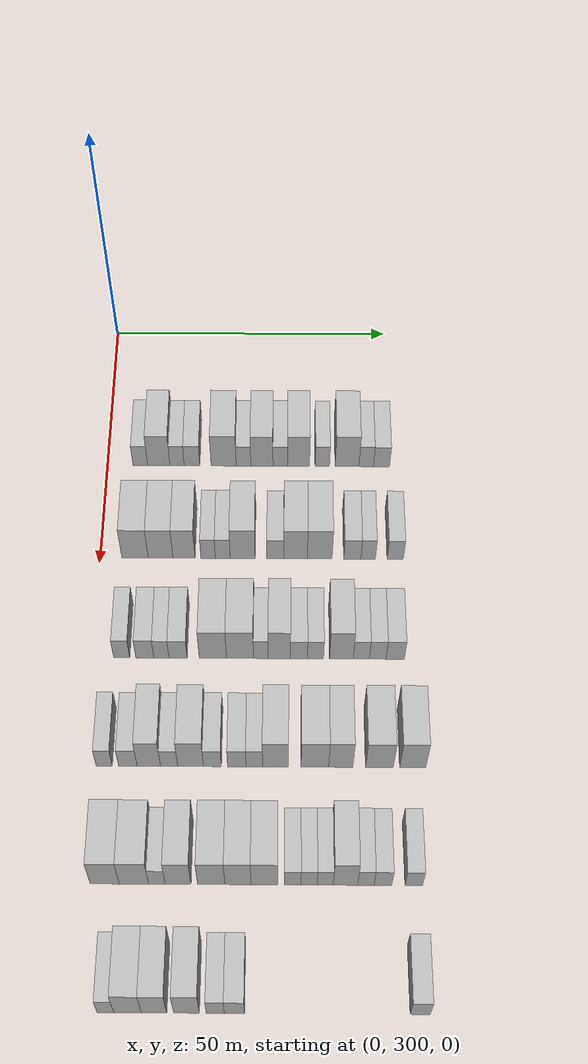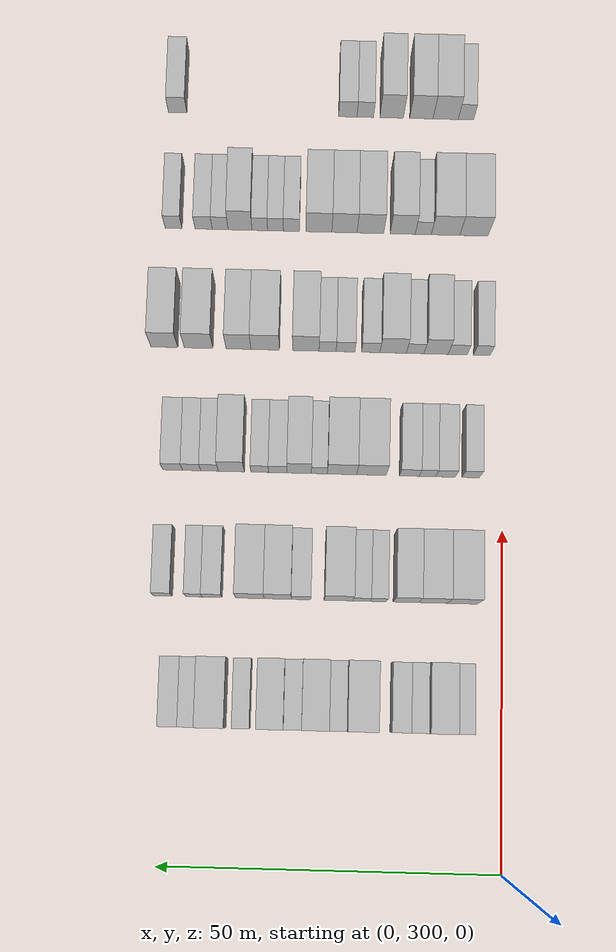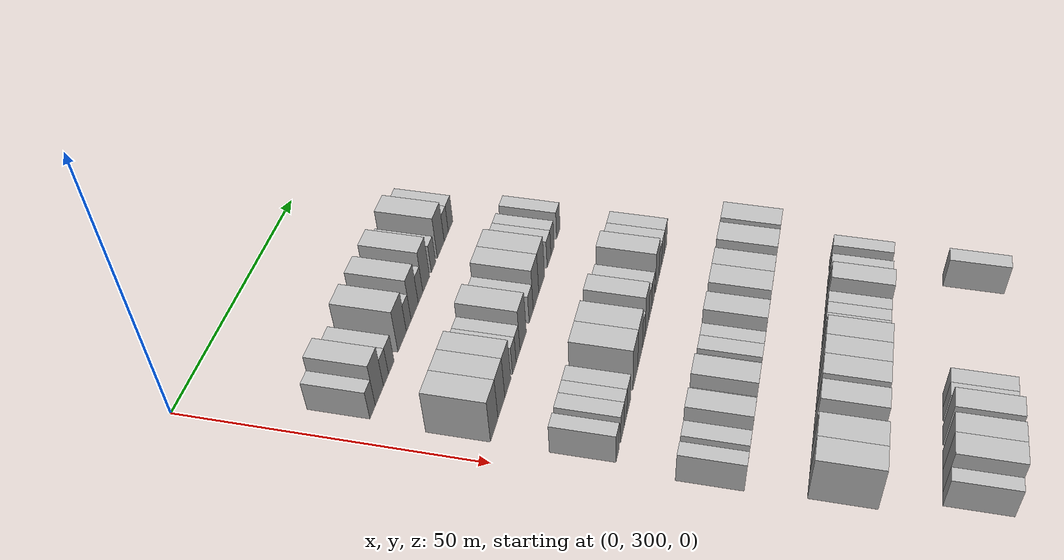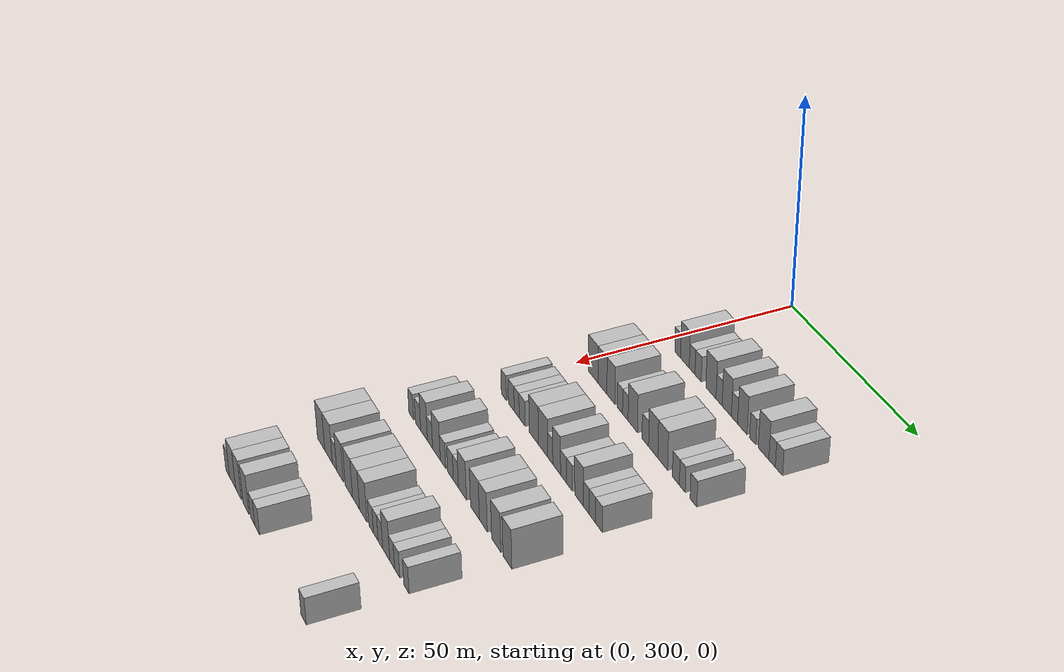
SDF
<sdf version="1.6">
 <world name="default">
  <model name="building_171">
   <static>1</static>
   <pose>25.0000 305.8912 0 0.000000 0.000000 0.000000</pose>
   <link name="link">
    <pose>0 0 3.00 0 0 0</pose>
    <collision name="collision"><geometry><box><size>10.0000 2.6040 6.0000</size></box></geometry></collision>
    <visual name="visual">
     <cast_shadows>0</cast_shadows>
     <geometry><box><size>10.0000 2.6040 6.0000</size></box></geometry>
     <material>
      <script>
       <uri>model://HANNAS_wall/materials/scripts</uri>
       <uri>model://HANNAS_wall/materials/textures</uri>
       <name>vrc/HANNAS_wall</name>
      </script>
     </material>
    </visual>
   </link>
  </model>
  <model name="building_172">
   <static>1</static>
   <pose>25.0000 309.1708 0 0.000000 0.000000 0.000000</pose>
   <link name="link">
    <pose>0 0 4.50 0 0 0</pose>
    <collision name="collision"><geometry><box><size>10.0000 3.9552 9.0000</size></box></geometry></collision>
    <visual name="visual">
     <cast_shadows>0</cast_shadows>
     <geometry><box><size>10.0000 3.9552 9.0000</size></box></geometry>
     <material>
      <script>
       <uri>model://HANNAS_wall/materials/scripts</uri>
       <uri>model://HANNAS_wall/materials/textures</uri>
       <name>vrc/HANNAS_wall</name>
      </script>
     </material>
    </visual>
   </link>
  </model>
  <model name="building_173">
   <static>1</static>
   <pose>25.0000 312.4122 0 0.000000 0.000000 0.000000</pose>
   <link name="link">
    <pose>0 0 3.00 0 0 0</pose>
    <collision name="collision"><geometry><box><size>10.0000 2.5276 6.0000</size></box></geometry></collision>
    <visual name="visual">
     <cast_shadows>0</cast_shadows>
     <geometry><box><size>10.0000 2.5276 6.0000</size></box></geometry>
     <material>
      <script>
       <uri>model://HANNAS_wall/materials/scripts</uri>
       <uri>model://HANNAS_wall/materials/textures</uri>
       <name>vrc/HANNAS_wall</name>
      </script>
     </material>
    </visual>
   </link>
  </model>
  <model name="building_174">
   <static>1</static>
   <pose>25.0000 315.0669 0 0.000000 0.000000 0.000000</pose>
   <link name="link">
    <pose>0 0 3.00 0 0 0</pose>
    <collision name="collision"><geometry><box><size>10.0000 2.7819 6.0000</size></box></geometry></collision>
    <visual name="visual">
     <cast_shadows>0</cast_shadows>
     <geometry><box><size>10.0000 2.7819 6.0000</size></box></geometry>
     <material>
      <script>
       <uri>model://HANNAS_wall/materials/scripts</uri>
       <uri>model://HANNAS_wall/materials/textures</uri>
       <name>vrc/HANNAS_wall</name>
      </script>
     </material>
    </visual>
   </link>
  </model>
  <model name="building_175">
   <static>1</static>
   <pose>25.0000 320.6797 0 0.000000 0.000000 0.000000</pose>
   <link name="link">
    <pose>0 0 4.50 0 0 0</pose>
    <collision name="collision"><geometry><box><size>10.0000 4.4437 9.0000</size></box></geometry></collision>
    <visual name="visual">
     <cast_shadows>0</cast_shadows>
     <geometry><box><size>10.0000 4.4437 9.0000</size></box></geometry>
     <material>
      <script>
       <uri>model://HANNAS_wall/materials/scripts</uri>
       <uri>model://HANNAS_wall/materials/textures</uri>
       <name>vrc/HANNAS_wall</name>
      </script>
     </material>
    </visual>
   </link>
  </model>
  <model name="building_176">
   <static>1</static>
   <pose>25.0000 324.1951 0 0.000000 0.000000 0.000000</pose>
   <link name="link">
    <pose>0 0 3.00 0 0 0</pose>
    <collision name="collision"><geometry><box><size>10.0000 2.5870 6.0000</size></box></geometry></collision>
    <visual name="visual">
     <cast_shadows>0</cast_shadows>
     <geometry><box><size>10.0000 2.5870 6.0000</size></box></geometry>
     <material>
      <script>
       <uri>model://HANNAS_wall/materials/scripts</uri>
       <uri>model://HANNAS_wall/materials/textures</uri>
       <name>vrc/HANNAS_wall</name>
      </script>
     </material>
    </visual>
   </link>
  </model>
  <model name="building_177">
   <static>1</static>
   <pose>25.0000 327.4568 0 0.000000 0.000000 0.000000</pose>
   <link name="link">
    <pose>0 0 4.50 0 0 0</pose>
    <collision name="collision"><geometry><box><size>10.0000 3.9363 9.0000</size></box></geometry></collision>
    <visual name="visual">
     <cast_shadows>0</cast_shadows>
     <geometry><box><size>10.0000 3.9363 9.0000</size></box></geometry>
     <material>
      <script>
       <uri>model://HANNAS_wall/materials/scripts</uri>
       <uri>model://HANNAS_wall/materials/textures</uri>
       <name>vrc/HANNAS_wall</name>
      </script>
     </material>
    </visual>
   </link>
  </model>
  <model name="building_178">
   <static>1</static>
   <pose>25.0000 330.7279 0 0.000000 0.000000 0.000000</pose>
   <link name="link">
    <pose>0 0 3.00 0 0 0</pose>
    <collision name="collision"><geometry><box><size>10.0000 2.6060 6.0000</size></box></geometry></collision>
    <visual name="visual">
     <cast_shadows>0</cast_shadows>
     <geometry><box><size>10.0000 2.6060 6.0000</size></box></geometry>
     <material>
      <script>
       <uri>model://HANNAS_wall/materials/scripts</uri>
       <uri>model://HANNAS_wall/materials/textures</uri>
       <name>vrc/HANNAS_wall</name>
      </script>
     </material>
    </visual>
   </link>
  </model>
  <model name="building_179">
   <static>1</static>
   <pose>25.0000 333.9753 0 0.000000 0.000000 0.000000</pose>
   <link name="link">
    <pose>0 0 4.50 0 0 0</pose>
    <collision name="collision"><geometry><box><size>10.0000 3.8887 9.0000</size></box></geometry></collision>
    <visual name="visual">
     <cast_shadows>0</cast_shadows>
     <geometry><box><size>10.0000 3.8887 9.0000</size></box></geometry>
     <material>
      <script>
       <uri>model://HANNAS_wall/materials/scripts</uri>
       <uri>model://HANNAS_wall/materials/textures</uri>
       <name>vrc/HANNAS_wall</name>
      </script>
     </material>
    </visual>
   </link>
  </model>
  <model name="building_180">
   <static>1</static>
   <pose>25.0000 338.1950 0 0.000000 0.000000 0.000000</pose>
   <link name="link">
    <pose>0 0 3.00 0 0 0</pose>
    <collision name="collision"><geometry><box><size>10.0000 2.5507 6.0000</size></box></geometry></collision>
    <visual name="visual">
     <cast_shadows>0</cast_shadows>
     <geometry><box><size>10.0000 2.5507 6.0000</size></box></geometry>
     <material>
      <script>
       <uri>model://HANNAS_wall/materials/scripts</uri>
       <uri>model://HANNAS_wall/materials/textures</uri>
       <name>vrc/HANNAS_wall</name>
      </script>
     </material>
    </visual>
   </link>
  </model>
  <model name="building_181">
   <static>1</static>
   <pose>25.0000 342.5899 0 0.000000 0.000000 0.000000</pose>
   <link name="link">
    <pose>0 0 4.50 0 0 0</pose>
    <collision name="collision"><geometry><box><size>10.0000 4.2392 9.0000</size></box></geometry></collision>
    <visual name="visual">
     <cast_shadows>0</cast_shadows>
     <geometry><box><size>10.0000 4.2392 9.0000</size></box></geometry>
     <material>
      <script>
       <uri>model://HANNAS_wall/materials/scripts</uri>
       <uri>model://HANNAS_wall/materials/textures</uri>
       <name>vrc/HANNAS_wall</name>
      </script>
     </material>
    </visual>
   </link>
  </model>
  <model name="building_182">
   <static>1</static>
   <pose>25.0000 345.9905 0 0.000000 0.000000 0.000000</pose>
   <link name="link">
    <pose>0 0 3.00 0 0 0</pose>
    <collision name="collision"><geometry><box><size>10.0000 2.5618 6.0000</size></box></geometry></collision>
    <visual name="visual">
     <cast_shadows>0</cast_shadows>
     <geometry><box><size>10.0000 2.5618 6.0000</size></box></geometry>
     <material>
      <script>
       <uri>model://HANNAS_wall/materials/scripts</uri>
       <uri>model://HANNAS_wall/materials/textures</uri>
       <name>vrc/HANNAS_wall</name>
      </script>
     </material>
    </visual>
   </link>
  </model>
  <model name="building_183">
   <static>1</static>
   <pose>25.0000 348.6983 0 0.000000 0.000000 0.000000</pose>
   <link name="link">
    <pose>0 0 3.00 0 0 0</pose>
    <collision name="collision"><geometry><box><size>10.0000 2.8539 6.0000</size></box></geometry></collision>
    <visual name="visual">
     <cast_shadows>0</cast_shadows>
     <geometry><box><size>10.0000 2.8539 6.0000</size></box></geometry>
     <material>
      <script>
       <uri>model://HANNAS_wall/materials/scripts</uri>
       <uri>model://HANNAS_wall/materials/textures</uri>
       <name>vrc/HANNAS_wall</name>
      </script>
     </material>
    </visual>
   </link>
  </model>
  <model name="building_333">
   <static>1</static>
   <pose>44.0000 305.9930 0 0.000000 0.000000 0.000000</pose>
   <link name="link">
    <pose>0 0 4.50 0 0 0</pose>
    <collision name="collision"><geometry><box><size>10.0000 4.4911 9.0000</size></box></geometry></collision>
    <visual name="visual">
     <cast_shadows>0</cast_shadows>
     <geometry><box><size>10.0000 4.4911 9.0000</size></box></geometry>
     <material>
      <script>
       <uri>model://HANNAS_wall/materials/scripts</uri>
       <uri>model://HANNAS_wall/materials/textures</uri>
       <name>vrc/HANNAS_wall</name>
      </script>
     </material>
    </visual>
   </link>
  </model>
  <model name="building_334">
   <static>1</static>
   <pose>44.0000 310.3567 0 0.000000 0.000000 0.000000</pose>
   <link name="link">
    <pose>0 0 4.50 0 0 0</pose>
    <collision name="collision"><geometry><box><size>10.0000 4.2363 9.0000</size></box></geometry></collision>
    <visual name="visual">
     <cast_shadows>0</cast_shadows>
     <geometry><box><size>10.0000 4.2363 9.0000</size></box></geometry>
     <material>
      <script>
       <uri>model://HANNAS_wall/materials/scripts</uri>
       <uri>model://HANNAS_wall/materials/textures</uri>
       <name>vrc/HANNAS_wall</name>
      </script>
     </material>
    </visual>
   </link>
  </model>
  <model name="building_335">
   <static>1</static>
   <pose>44.0000 314.3687 0 0.000000 0.000000 0.000000</pose>
   <link name="link">
    <pose>0 0 4.50 0 0 0</pose>
    <collision name="collision"><geometry><box><size>10.0000 3.7875 9.0000</size></box></geometry></collision>
    <visual name="visual">
     <cast_shadows>0</cast_shadows>
     <geometry><box><size>10.0000 3.7875 9.0000</size></box></geometry>
     <material>
      <script>
       <uri>model://HANNAS_wall/materials/scripts</uri>
       <uri>model://HANNAS_wall/materials/textures</uri>
       <name>vrc/HANNAS_wall</name>
      </script>
     </material>
    </visual>
   </link>
  </model>
  <model name="building_336">
   <static>1</static>
   <pose>44.0000 318.4871 0 0.000000 0.000000 0.000000</pose>
   <link name="link">
    <pose>0 0 3.00 0 0 0</pose>
    <collision name="collision"><geometry><box><size>10.0000 2.4493 6.0000</size></box></geometry></collision>
    <visual name="visual">
     <cast_shadows>0</cast_shadows>
     <geometry><box><size>10.0000 2.4493 6.0000</size></box></geometry>
     <material>
      <script>
       <uri>model://HANNAS_wall/materials/scripts</uri>
       <uri>model://HANNAS_wall/materials/textures</uri>
       <name>vrc/HANNAS_wall</name>
      </script>
     </material>
    </visual>
   </link>
  </model>
  <model name="building_337">
   <static>1</static>
   <pose>44.0000 320.9873 0 0.000000 0.000000 0.000000</pose>
   <link name="link">
    <pose>0 0 3.00 0 0 0</pose>
    <collision name="collision"><geometry><box><size>10.0000 2.5511 6.0000</size></box></geometry></collision>
    <visual name="visual">
     <cast_shadows>0</cast_shadows>
     <geometry><box><size>10.0000 2.5511 6.0000</size></box></geometry>
     <material>
      <script>
       <uri>model://HANNAS_wall/materials/scripts</uri>
       <uri>model://HANNAS_wall/materials/textures</uri>
       <name>vrc/HANNAS_wall</name>
      </script>
     </material>
    </visual>
   </link>
  </model>
  <model name="building_338">
   <static>1</static>
   <pose>44.0000 324.3921 0 0.000000 0.000000 0.000000</pose>
   <link name="link">
    <pose>0 0 4.50 0 0 0</pose>
    <collision name="collision"><geometry><box><size>10.0000 4.2586 9.0000</size></box></geometry></collision>
    <visual name="visual">
     <cast_shadows>0</cast_shadows>
     <geometry><box><size>10.0000 4.2586 9.0000</size></box></geometry>
     <material>
      <script>
       <uri>model://HANNAS_wall/materials/scripts</uri>
       <uri>model://HANNAS_wall/materials/textures</uri>
       <name>vrc/HANNAS_wall</name>
      </script>
     </material>
    </visual>
   </link>
  </model>
  <model name="building_339">
   <static>1</static>
   <pose>44.0000 329.9671 0 0.000000 0.000000 0.000000</pose>
   <link name="link">
    <pose>0 0 3.00 0 0 0</pose>
    <collision name="collision"><geometry><box><size>10.0000 2.8915 6.0000</size></box></geometry></collision>
    <visual name="visual">
     <cast_shadows>0</cast_shadows>
     <geometry><box><size>10.0000 2.8915 6.0000</size></box></geometry>
     <material>
      <script>
       <uri>model://HANNAS_wall/materials/scripts</uri>
       <uri>model://HANNAS_wall/materials/textures</uri>
       <name>vrc/HANNAS_wall</name>
      </script>
     </material>
    </visual>
   </link>
  </model>
  <model name="building_340">
   <static>1</static>
   <pose>44.0000 333.4193 0 0.000000 0.000000 0.000000</pose>
   <link name="link">
    <pose>0 0 4.50 0 0 0</pose>
    <collision name="collision"><geometry><box><size>10.0000 4.0128 9.0000</size></box></geometry></collision>
    <visual name="visual">
     <cast_shadows>0</cast_shadows>
     <geometry><box><size>10.0000 4.0128 9.0000</size></box></geometry>
     <material>
      <script>
       <uri>model://HANNAS_wall/materials/scripts</uri>
       <uri>model://HANNAS_wall/materials/textures</uri>
       <name>vrc/HANNAS_wall</name>
      </script>
     </material>
    </visual>
   </link>
  </model>
  <model name="building_341">
   <static>1</static>
   <pose>44.0000 337.5423 0 0.000000 0.000000 0.000000</pose>
   <link name="link">
    <pose>0 0 4.50 0 0 0</pose>
    <collision name="collision"><geometry><box><size>10.0000 4.2333 9.0000</size></box></geometry></collision>
    <visual name="visual">
     <cast_shadows>0</cast_shadows>
     <geometry><box><size>10.0000 4.2333 9.0000</size></box></geometry>
     <material>
      <script>
       <uri>model://HANNAS_wall/materials/scripts</uri>
       <uri>model://HANNAS_wall/materials/textures</uri>
       <name>vrc/HANNAS_wall</name>
      </script>
     </material>
    </visual>
   </link>
  </model>
  <model name="building_342">
   <static>1</static>
   <pose>44.0000 343.1254 0 0.000000 0.000000 0.000000</pose>
   <link name="link">
    <pose>0 0 3.00 0 0 0</pose>
    <collision name="collision"><geometry><box><size>10.0000 2.9328 6.0000</size></box></geometry></collision>
    <visual name="visual">
     <cast_shadows>0</cast_shadows>
     <geometry><box><size>10.0000 2.9328 6.0000</size></box></geometry>
     <material>
      <script>
       <uri>model://HANNAS_wall/materials/scripts</uri>
       <uri>model://HANNAS_wall/materials/textures</uri>
       <name>vrc/HANNAS_wall</name>
      </script>
     </material>
    </visual>
   </link>
  </model>
  <model name="building_343">
   <static>1</static>
   <pose>44.0000 345.8350 0 0.000000 0.000000 0.000000</pose>
   <link name="link">
    <pose>0 0 3.00 0 0 0</pose>
    <collision name="collision"><geometry><box><size>10.0000 2.4865 6.0000</size></box></geometry></collision>
    <visual name="visual">
     <cast_shadows>0</cast_shadows>
     <geometry><box><size>10.0000 2.4865 6.0000</size></box></geometry>
     <material>
      <script>
       <uri>model://HANNAS_wall/materials/scripts</uri>
       <uri>model://HANNAS_wall/materials/textures</uri>
       <name>vrc/HANNAS_wall</name>
      </script>
     </material>
    </visual>
   </link>
  </model>
  <model name="building_344">
   <static>1</static>
   <pose>44.0000 350.4587 0 0.000000 0.000000 0.000000</pose>
   <link name="link">
    <pose>0 0 3.00 0 0 0</pose>
    <collision name="collision"><geometry><box><size>10.0000 2.7607 6.0000</size></box></geometry></collision>
    <visual name="visual">
     <cast_shadows>0</cast_shadows>
     <geometry><box><size>10.0000 2.7607 6.0000</size></box></geometry>
     <material>
      <script>
       <uri>model://HANNAS_wall/materials/scripts</uri>
       <uri>model://HANNAS_wall/materials/textures</uri>
       <name>vrc/HANNAS_wall</name>
      </script>
     </material>
    </visual>
   </link>
  </model>
  <model name="building_498">
   <static>1</static>
   <pose>63.0000 304.8606 0 0.000000 0.000000 0.000000</pose>
   <link name="link">
    <pose>0 0 3.00 0 0 0</pose>
    <collision name="collision"><geometry><box><size>10.0000 2.6306 6.0000</size></box></geometry></collision>
    <visual name="visual">
     <cast_shadows>0</cast_shadows>
     <geometry><box><size>10.0000 2.6306 6.0000</size></box></geometry>
     <material>
      <script>
       <uri>model://HANNAS_wall/materials/scripts</uri>
       <uri>model://HANNAS_wall/materials/textures</uri>
       <name>vrc/HANNAS_wall</name>
      </script>
     </material>
    </visual>
   </link>
  </model>
  <model name="building_499">
   <static>1</static>
   <pose>63.0000 308.6495 0 0.000000 0.000000 0.000000</pose>
   <link name="link">
    <pose>0 0 3.00 0 0 0</pose>
    <collision name="collision"><geometry><box><size>10.0000 2.9471 6.0000</size></box></geometry></collision>
    <visual name="visual">
     <cast_shadows>0</cast_shadows>
     <geometry><box><size>10.0000 2.9471 6.0000</size></box></geometry>
     <material>
      <script>
       <uri>model://HANNAS_wall/materials/scripts</uri>
       <uri>model://HANNAS_wall/materials/textures</uri>
       <name>vrc/HANNAS_wall</name>
      </script>
     </material>
    </visual>
   </link>
  </model>
  <model name="building_500">
   <static>1</static>
   <pose>63.0000 311.3678 0 0.000000 0.000000 0.000000</pose>
   <link name="link">
    <pose>0 0 3.00 0 0 0</pose>
    <collision name="collision"><geometry><box><size>10.0000 2.4896 6.0000</size></box></geometry></collision>
    <visual name="visual">
     <cast_shadows>0</cast_shadows>
     <geometry><box><size>10.0000 2.4896 6.0000</size></box></geometry>
     <material>
      <script>
       <uri>model://HANNAS_wall/materials/scripts</uri>
       <uri>model://HANNAS_wall/materials/textures</uri>
       <name>vrc/HANNAS_wall</name>
      </script>
     </material>
    </visual>
   </link>
  </model>
  <model name="building_501">
   <static>1</static>
   <pose>63.0000 314.1089 0 0.000000 0.000000 0.000000</pose>
   <link name="link">
    <pose>0 0 3.00 0 0 0</pose>
    <collision name="collision"><geometry><box><size>10.0000 2.9926 6.0000</size></box></geometry></collision>
    <visual name="visual">
     <cast_shadows>0</cast_shadows>
     <geometry><box><size>10.0000 2.9926 6.0000</size></box></geometry>
     <material>
      <script>
       <uri>model://HANNAS_wall/materials/scripts</uri>
       <uri>model://HANNAS_wall/materials/textures</uri>
       <name>vrc/HANNAS_wall</name>
      </script>
     </material>
    </visual>
   </link>
  </model>
  <model name="building_502">
   <static>1</static>
   <pose>63.0000 319.8321 0 0.000000 0.000000 0.000000</pose>
   <link name="link">
    <pose>0 0 4.50 0 0 0</pose>
    <collision name="collision"><geometry><box><size>10.0000 4.4537 9.0000</size></box></geometry></collision>
    <visual name="visual">
     <cast_shadows>0</cast_shadows>
     <geometry><box><size>10.0000 4.4537 9.0000</size></box></geometry>
     <material>
      <script>
       <uri>model://HANNAS_wall/materials/scripts</uri>
       <uri>model://HANNAS_wall/materials/textures</uri>
       <name>vrc/HANNAS_wall</name>
      </script>
     </material>
    </visual>
   </link>
  </model>
  <model name="building_503">
   <static>1</static>
   <pose>63.0000 324.2821 0 0.000000 0.000000 0.000000</pose>
   <link name="link">
    <pose>0 0 4.50 0 0 0</pose>
    <collision name="collision"><geometry><box><size>10.0000 4.4464 9.0000</size></box></geometry></collision>
    <visual name="visual">
     <cast_shadows>0</cast_shadows>
     <geometry><box><size>10.0000 4.4464 9.0000</size></box></geometry>
     <material>
      <script>
       <uri>model://HANNAS_wall/materials/scripts</uri>
       <uri>model://HANNAS_wall/materials/textures</uri>
       <name>vrc/HANNAS_wall</name>
      </script>
     </material>
    </visual>
   </link>
  </model>
  <model name="building_504">
   <static>1</static>
   <pose>63.0000 327.7085 0 0.000000 0.000000 0.000000</pose>
   <link name="link">
    <pose>0 0 3.00 0 0 0</pose>
    <collision name="collision"><geometry><box><size>10.0000 2.4064 6.0000</size></box></geometry></collision>
    <visual name="visual">
     <cast_shadows>0</cast_shadows>
     <geometry><box><size>10.0000 2.4064 6.0000</size></box></geometry>
     <material>
      <script>
       <uri>model://HANNAS_wall/materials/scripts</uri>
       <uri>model://HANNAS_wall/materials/textures</uri>
       <name>vrc/HANNAS_wall</name>
      </script>
     </material>
    </visual>
   </link>
  </model>
  <model name="building_505">
   <static>1</static>
   <pose>63.0000 330.7235 0 0.000000 0.000000 0.000000</pose>
   <link name="link">
    <pose>0 0 4.50 0 0 0</pose>
    <collision name="collision"><geometry><box><size>10.0000 3.6236 9.0000</size></box></geometry></collision>
    <visual name="visual">
     <cast_shadows>0</cast_shadows>
     <geometry><box><size>10.0000 3.6236 9.0000</size></box></geometry>
     <material>
      <script>
       <uri>model://HANNAS_wall/materials/scripts</uri>
       <uri>model://HANNAS_wall/materials/textures</uri>
       <name>vrc/HANNAS_wall</name>
      </script>
     </material>
    </visual>
   </link>
  </model>
  <model name="building_506">
   <static>1</static>
   <pose>63.0000 333.9336 0 0.000000 0.000000 0.000000</pose>
   <link name="link">
    <pose>0 0 3.00 0 0 0</pose>
    <collision name="collision"><geometry><box><size>10.0000 2.7966 6.0000</size></box></geometry></collision>
    <visual name="visual">
     <cast_shadows>0</cast_shadows>
     <geometry><box><size>10.0000 2.7966 6.0000</size></box></geometry>
     <material>
      <script>
       <uri>model://HANNAS_wall/materials/scripts</uri>
       <uri>model://HANNAS_wall/materials/textures</uri>
       <name>vrc/HANNAS_wall</name>
      </script>
     </material>
    </visual>
   </link>
  </model>
  <model name="building_507">
   <static>1</static>
   <pose>63.0000 336.6606 0 0.000000 0.000000 0.000000</pose>
   <link name="link">
    <pose>0 0 3.00 0 0 0</pose>
    <collision name="collision"><geometry><box><size>10.0000 2.6573 6.0000</size></box></geometry></collision>
    <visual name="visual">
     <cast_shadows>0</cast_shadows>
     <geometry><box><size>10.0000 2.6573 6.0000</size></box></geometry>
     <material>
      <script>
       <uri>model://HANNAS_wall/materials/scripts</uri>
       <uri>model://HANNAS_wall/materials/textures</uri>
       <name>vrc/HANNAS_wall</name>
      </script>
     </material>
    </visual>
   </link>
  </model>
  <model name="building_508">
   <static>1</static>
   <pose>63.0000 340.9432 0 0.000000 0.000000 0.000000</pose>
   <link name="link">
    <pose>0 0 4.50 0 0 0</pose>
    <collision name="collision"><geometry><box><size>10.0000 3.9077 9.0000</size></box></geometry></collision>
    <visual name="visual">
     <cast_shadows>0</cast_shadows>
     <geometry><box><size>10.0000 3.9077 9.0000</size></box></geometry>
     <material>
      <script>
       <uri>model://HANNAS_wall/materials/scripts</uri>
       <uri>model://HANNAS_wall/materials/textures</uri>
       <name>vrc/HANNAS_wall</name>
      </script>
     </material>
    </visual>
   </link>
  </model>
  <model name="building_509">
   <static>1</static>
   <pose>63.0000 344.2219 0 0.000000 0.000000 0.000000</pose>
   <link name="link">
    <pose>0 0 3.00 0 0 0</pose>
    <collision name="collision"><geometry><box><size>10.0000 2.6498 6.0000</size></box></geometry></collision>
    <visual name="visual">
     <cast_shadows>0</cast_shadows>
     <geometry><box><size>10.0000 2.6498 6.0000</size></box></geometry>
     <material>
      <script>
       <uri>model://HANNAS_wall/materials/scripts</uri>
       <uri>model://HANNAS_wall/materials/textures</uri>
       <name>vrc/HANNAS_wall</name>
      </script>
     </material>
    </visual>
   </link>
  </model>
  <model name="building_510">
   <static>1</static>
   <pose>63.0000 346.9175 0 0.000000 0.000000 0.000000</pose>
   <link name="link">
    <pose>0 0 3.00 0 0 0</pose>
    <collision name="collision"><geometry><box><size>10.0000 2.7413 6.0000</size></box></geometry></collision>
    <visual name="visual">
     <cast_shadows>0</cast_shadows>
     <geometry><box><size>10.0000 2.7413 6.0000</size></box></geometry>
     <material>
      <script>
       <uri>model://HANNAS_wall/materials/scripts</uri>
       <uri>model://HANNAS_wall/materials/textures</uri>
       <name>vrc/HANNAS_wall</name>
      </script>
     </material>
    </visual>
   </link>
  </model>
  <model name="building_511">
   <static>1</static>
   <pose>63.0000 349.7833 0 0.000000 0.000000 0.000000</pose>
   <link name="link">
    <pose>0 0 3.00 0 0 0</pose>
    <collision name="collision"><geometry><box><size>10.0000 2.9905 6.0000</size></box></geometry></collision>
    <visual name="visual">
     <cast_shadows>0</cast_shadows>
     <geometry><box><size>10.0000 2.9905 6.0000</size></box></geometry>
     <material>
      <script>
       <uri>model://HANNAS_wall/materials/scripts</uri>
       <uri>model://HANNAS_wall/materials/textures</uri>
       <name>vrc/HANNAS_wall</name>
      </script>
     </material>
    </visual>
   </link>
  </model>
  <model name="building_661">
   <static>1</static>
   <pose>82.0000 303.2359 0 0.000000 0.000000 0.000000</pose>
   <link name="link">
    <pose>0 0 3.00 0 0 0</pose>
    <collision name="collision"><geometry><box><size>10.0000 2.5404 6.0000</size></box></geometry></collision>
    <visual name="visual">
     <cast_shadows>0</cast_shadows>
     <geometry><box><size>10.0000 2.5404 6.0000</size></box></geometry>
     <material>
      <script>
       <uri>model://HANNAS_wall/materials/scripts</uri>
       <uri>model://HANNAS_wall/materials/textures</uri>
       <name>vrc/HANNAS_wall</name>
      </script>
     </material>
    </visual>
   </link>
  </model>
  <model name="building_662">
   <static>1</static>
   <pose>82.0000 306.9620 0 0.000000 0.000000 0.000000</pose>
   <link name="link">
    <pose>0 0 3.00 0 0 0</pose>
    <collision name="collision"><geometry><box><size>10.0000 2.9117 6.0000</size></box></geometry></collision>
    <visual name="visual">
     <cast_shadows>0</cast_shadows>
     <geometry><box><size>10.0000 2.9117 6.0000</size></box></geometry>
     <material>
      <script>
       <uri>model://HANNAS_wall/materials/scripts</uri>
       <uri>model://HANNAS_wall/materials/textures</uri>
       <name>vrc/HANNAS_wall</name>
      </script>
     </material>
    </visual>
   </link>
  </model>
  <model name="building_663">
   <static>1</static>
   <pose>82.0000 310.2659 0 0.000000 0.000000 0.000000</pose>
   <link name="link">
    <pose>0 0 4.50 0 0 0</pose>
    <collision name="collision"><geometry><box><size>10.0000 3.6962 9.0000</size></box></geometry></collision>
    <visual name="visual">
     <cast_shadows>0</cast_shadows>
     <geometry><box><size>10.0000 3.6962 9.0000</size></box></geometry>
     <material>
      <script>
       <uri>model://HANNAS_wall/materials/scripts</uri>
       <uri>model://HANNAS_wall/materials/textures</uri>
       <name>vrc/HANNAS_wall</name>
      </script>
     </material>
    </visual>
   </link>
  </model>
  <model name="building_664">
   <static>1</static>
   <pose>82.0000 313.4660 0 0.000000 0.000000 0.000000</pose>
   <link name="link">
    <pose>0 0 3.00 0 0 0</pose>
    <collision name="collision"><geometry><box><size>10.0000 2.7040 6.0000</size></box></geometry></collision>
    <visual name="visual">
     <cast_shadows>0</cast_shadows>
     <geometry><box><size>10.0000 2.7040 6.0000</size></box></geometry>
     <material>
      <script>
       <uri>model://HANNAS_wall/materials/scripts</uri>
       <uri>model://HANNAS_wall/materials/textures</uri>
       <name>vrc/HANNAS_wall</name>
      </script>
     </material>
    </visual>
   </link>
  </model>
  <model name="building_665">
   <static>1</static>
   <pose>82.0000 316.8520 0 0.000000 0.000000 0.000000</pose>
   <link name="link">
    <pose>0 0 4.50 0 0 0</pose>
    <collision name="collision"><geometry><box><size>10.0000 4.0680 9.0000</size></box></geometry></collision>
    <visual name="visual">
     <cast_shadows>0</cast_shadows>
     <geometry><box><size>10.0000 4.0680 9.0000</size></box></geometry>
     <material>
      <script>
       <uri>model://HANNAS_wall/materials/scripts</uri>
       <uri>model://HANNAS_wall/materials/textures</uri>
       <name>vrc/HANNAS_wall</name>
      </script>
     </material>
    </visual>
   </link>
  </model>
  <model name="building_666">
   <static>1</static>
   <pose>82.0000 320.2887 0 0.000000 0.000000 0.000000</pose>
   <link name="link">
    <pose>0 0 3.00 0 0 0</pose>
    <collision name="collision"><geometry><box><size>10.0000 2.8054 6.0000</size></box></geometry></collision>
    <visual name="visual">
     <cast_shadows>0</cast_shadows>
     <geometry><box><size>10.0000 2.8054 6.0000</size></box></geometry>
     <material>
      <script>
       <uri>model://HANNAS_wall/materials/scripts</uri>
       <uri>model://HANNAS_wall/materials/textures</uri>
       <name>vrc/HANNAS_wall</name>
      </script>
     </material>
    </visual>
   </link>
  </model>
  <model name="building_667">
   <static>1</static>
   <pose>82.0000 324.1396 0 0.000000 0.000000 0.000000</pose>
   <link name="link">
    <pose>0 0 3.00 0 0 0</pose>
    <collision name="collision"><geometry><box><size>10.0000 2.8964 6.0000</size></box></geometry></collision>
    <visual name="visual">
     <cast_shadows>0</cast_shadows>
     <geometry><box><size>10.0000 2.8964 6.0000</size></box></geometry>
     <material>
      <script>
       <uri>model://HANNAS_wall/materials/scripts</uri>
       <uri>model://HANNAS_wall/materials/textures</uri>
       <name>vrc/HANNAS_wall</name>
      </script>
     </material>
    </visual>
   </link>
  </model>
  <model name="building_668">
   <static>1</static>
   <pose>82.0000 326.8889 0 0.000000 0.000000 0.000000</pose>
   <link name="link">
    <pose>0 0 3.00 0 0 0</pose>
    <collision name="collision"><geometry><box><size>10.0000 2.6021 6.0000</size></box></geometry></collision>
    <visual name="visual">
     <cast_shadows>0</cast_shadows>
     <geometry><box><size>10.0000 2.6021 6.0000</size></box></geometry>
     <material>
      <script>
       <uri>model://HANNAS_wall/materials/scripts</uri>
       <uri>model://HANNAS_wall/materials/textures</uri>
       <name>vrc/HANNAS_wall</name>
      </script>
     </material>
    </visual>
   </link>
  </model>
  <model name="building_669">
   <static>1</static>
   <pose>82.0000 330.2135 0 0.000000 0.000000 0.000000</pose>
   <link name="link">
    <pose>0 0 4.50 0 0 0</pose>
    <collision name="collision"><geometry><box><size>10.0000 4.0470 9.0000</size></box></geometry></collision>
    <visual name="visual">
     <cast_shadows>0</cast_shadows>
     <geometry><box><size>10.0000 4.0470 9.0000</size></box></geometry>
     <material>
      <script>
       <uri>model://HANNAS_wall/materials/scripts</uri>
       <uri>model://HANNAS_wall/materials/textures</uri>
       <name>vrc/HANNAS_wall</name>
      </script>
     </material>
    </visual>
   </link>
  </model>
  <model name="building_670">
   <static>1</static>
   <pose>82.0000 336.4217 0 0.000000 0.000000 0.000000</pose>
   <link name="link">
    <pose>0 0 4.50 0 0 0</pose>
    <collision name="collision"><geometry><box><size>10.0000 4.3694 9.0000</size></box></geometry></collision>
    <visual name="visual">
     <cast_shadows>0</cast_shadows>
     <geometry><box><size>10.0000 4.3694 9.0000</size></box></geometry>
     <material>
      <script>
       <uri>model://HANNAS_wall/materials/scripts</uri>
       <uri>model://HANNAS_wall/materials/textures</uri>
       <name>vrc/HANNAS_wall</name>
      </script>
     </material>
    </visual>
   </link>
  </model>
  <model name="building_671">
   <static>1</static>
   <pose>82.0000 340.5119 0 0.000000 0.000000 0.000000</pose>
   <link name="link">
    <pose>0 0 4.50 0 0 0</pose>
    <collision name="collision"><geometry><box><size>10.0000 3.8110 9.0000</size></box></geometry></collision>
    <visual name="visual">
     <cast_shadows>0</cast_shadows>
     <geometry><box><size>10.0000 3.8110 9.0000</size></box></geometry>
     <material>
      <script>
       <uri>model://HANNAS_wall/materials/scripts</uri>
       <uri>model://HANNAS_wall/materials/textures</uri>
       <name>vrc/HANNAS_wall</name>
      </script>
     </material>
    </visual>
   </link>
  </model>
  <model name="building_672">
   <static>1</static>
   <pose>82.0000 346.6067 0 0.000000 0.000000 0.000000</pose>
   <link name="link">
    <pose>0 0 4.50 0 0 0</pose>
    <collision name="collision"><geometry><box><size>10.0000 4.3786 9.0000</size></box></geometry></collision>
    <visual name="visual">
     <cast_shadows>0</cast_shadows>
     <geometry><box><size>10.0000 4.3786 9.0000</size></box></geometry>
     <material>
      <script>
       <uri>model://HANNAS_wall/materials/scripts</uri>
       <uri>model://HANNAS_wall/materials/textures</uri>
       <name>vrc/HANNAS_wall</name>
      </script>
     </material>
    </visual>
   </link>
  </model>
  <model name="building_673">
   <static>1</static>
   <pose>82.0000 351.8520 0 0.000000 0.000000 0.000000</pose>
   <link name="link">
    <pose>0 0 4.50 0 0 0</pose>
    <collision name="collision"><geometry><box><size>10.0000 4.1120 9.0000</size></box></geometry></collision>
    <visual name="visual">
     <cast_shadows>0</cast_shadows>
     <geometry><box><size>10.0000 4.1120 9.0000</size></box></geometry>
     <material>
      <script>
       <uri>model://HANNAS_wall/materials/scripts</uri>
       <uri>model://HANNAS_wall/materials/textures</uri>
       <name>vrc/HANNAS_wall</name>
      </script>
     </material>
    </visual>
   </link>
  </model>
  <model name="building_831">
   <static>1</static>
   <pose>101.0000 304.5710 0 0.000000 0.000000 0.000000</pose>
   <link name="link">
    <pose>0 0 4.50 0 0 0</pose>
    <collision name="collision"><geometry><box><size>10.0000 4.3796 9.0000</size></box></geometry></collision>
    <visual name="visual">
     <cast_shadows>0</cast_shadows>
     <geometry><box><size>10.0000 4.3796 9.0000</size></box></geometry>
     <material>
      <script>
       <uri>model://HANNAS_wall/materials/scripts</uri>
       <uri>model://HANNAS_wall/materials/textures</uri>
       <name>vrc/HANNAS_wall</name>
      </script>
     </material>
    </visual>
   </link>
  </model>
  <model name="building_832">
   <static>1</static>
   <pose>101.0000 308.9813 0 0.000000 0.000000 0.000000</pose>
   <link name="link">
    <pose>0 0 4.50 0 0 0</pose>
    <collision name="collision"><geometry><box><size>10.0000 4.4411 9.0000</size></box></geometry></collision>
    <visual name="visual">
     <cast_shadows>0</cast_shadows>
     <geometry><box><size>10.0000 4.4411 9.0000</size></box></geometry>
     <material>
      <script>
       <uri>model://HANNAS_wall/materials/scripts</uri>
       <uri>model://HANNAS_wall/materials/textures</uri>
       <name>vrc/HANNAS_wall</name>
      </script>
     </material>
    </visual>
   </link>
  </model>
  <model name="building_833">
   <static>1</static>
   <pose>101.0000 312.4500 0 0.000000 0.000000 0.000000</pose>
   <link name="link">
    <pose>0 0 3.00 0 0 0</pose>
    <collision name="collision"><geometry><box><size>10.0000 2.4963 6.0000</size></box></geometry></collision>
    <visual name="visual">
     <cast_shadows>0</cast_shadows>
     <geometry><box><size>10.0000 2.4963 6.0000</size></box></geometry>
     <material>
      <script>
       <uri>model://HANNAS_wall/materials/scripts</uri>
       <uri>model://HANNAS_wall/materials/textures</uri>
       <name>vrc/HANNAS_wall</name>
      </script>
     </material>
    </visual>
   </link>
  </model>
  <model name="building_834">
   <static>1</static>
   <pose>101.0000 315.6436 0 0.000000 0.000000 0.000000</pose>
   <link name="link">
    <pose>0 0 4.50 0 0 0</pose>
    <collision name="collision"><geometry><box><size>10.0000 3.8909 9.0000</size></box></geometry></collision>
    <visual name="visual">
     <cast_shadows>0</cast_shadows>
     <geometry><box><size>10.0000 3.8909 9.0000</size></box></geometry>
     <material>
      <script>
       <uri>model://HANNAS_wall/materials/scripts</uri>
       <uri>model://HANNAS_wall/materials/textures</uri>
       <name>vrc/HANNAS_wall</name>
      </script>
     </material>
    </visual>
   </link>
  </model>
  <model name="building_835">
   <static>1</static>
   <pose>101.0000 320.6500 0 0.000000 0.000000 0.000000</pose>
   <link name="link">
    <pose>0 0 4.50 0 0 0</pose>
    <collision name="collision"><geometry><box><size>10.0000 4.1219 9.0000</size></box></geometry></collision>
    <visual name="visual">
     <cast_shadows>0</cast_shadows>
     <geometry><box><size>10.0000 4.1219 9.0000</size></box></geometry>
     <material>
      <script>
       <uri>model://HANNAS_wall/materials/scripts</uri>
       <uri>model://HANNAS_wall/materials/textures</uri>
       <name>vrc/HANNAS_wall</name>
      </script>
     </material>
    </visual>
   </link>
  </model>
  <model name="building_836">
   <static>1</static>
   <pose>101.0000 324.6775 0 0.000000 0.000000 0.000000</pose>
   <link name="link">
    <pose>0 0 4.50 0 0 0</pose>
    <collision name="collision"><geometry><box><size>10.0000 3.9330 9.0000</size></box></geometry></collision>
    <visual name="visual">
     <cast_shadows>0</cast_shadows>
     <geometry><box><size>10.0000 3.9330 9.0000</size></box></geometry>
     <material>
      <script>
       <uri>model://HANNAS_wall/materials/scripts</uri>
       <uri>model://HANNAS_wall/materials/textures</uri>
       <name>vrc/HANNAS_wall</name>
      </script>
     </material>
    </visual>
   </link>
  </model>
  <model name="building_837">
   <static>1</static>
   <pose>101.0000 328.6535 0 0.000000 0.000000 0.000000</pose>
   <link name="link">
    <pose>0 0 4.50 0 0 0</pose>
    <collision name="collision"><geometry><box><size>10.0000 4.0191 9.0000</size></box></geometry></collision>
    <visual name="visual">
     <cast_shadows>0</cast_shadows>
     <geometry><box><size>10.0000 4.0191 9.0000</size></box></geometry>
     <material>
      <script>
       <uri>model://HANNAS_wall/materials/scripts</uri>
       <uri>model://HANNAS_wall/materials/textures</uri>
       <name>vrc/HANNAS_wall</name>
      </script>
     </material>
    </visual>
   </link>
  </model>
  <model name="building_838">
   <static>1</static>
   <pose>101.0000 332.9082 0 0.000000 0.000000 0.000000</pose>
   <link name="link">
    <pose>0 0 3.00 0 0 0</pose>
    <collision name="collision"><geometry><box><size>10.0000 2.4904 6.0000</size></box></geometry></collision>
    <visual name="visual">
     <cast_shadows>0</cast_shadows>
     <geometry><box><size>10.0000 2.4904 6.0000</size></box></geometry>
     <material>
      <script>
       <uri>model://HANNAS_wall/materials/scripts</uri>
       <uri>model://HANNAS_wall/materials/textures</uri>
       <name>vrc/HANNAS_wall</name>
      </script>
     </material>
    </visual>
   </link>
  </model>
  <model name="building_839">
   <static>1</static>
   <pose>101.0000 335.3824 0 0.000000 0.000000 0.000000</pose>
   <link name="link">
    <pose>0 0 3.00 0 0 0</pose>
    <collision name="collision"><geometry><box><size>10.0000 2.4580 6.0000</size></box></geometry></collision>
    <visual name="visual">
     <cast_shadows>0</cast_shadows>
     <geometry><box><size>10.0000 2.4580 6.0000</size></box></geometry>
     <material>
      <script>
       <uri>model://HANNAS_wall/materials/scripts</uri>
       <uri>model://HANNAS_wall/materials/textures</uri>
       <name>vrc/HANNAS_wall</name>
      </script>
     </material>
    </visual>
   </link>
  </model>
  <model name="building_840">
   <static>1</static>
   <pose>101.0000 337.8238 0 0.000000 0.000000 0.000000</pose>
   <link name="link">
    <pose>0 0 3.00 0 0 0</pose>
    <collision name="collision"><geometry><box><size>10.0000 2.4248 6.0000</size></box></geometry></collision>
    <visual name="visual">
     <cast_shadows>0</cast_shadows>
     <geometry><box><size>10.0000 2.4248 6.0000</size></box></geometry>
     <material>
      <script>
       <uri>model://HANNAS_wall/materials/scripts</uri>
       <uri>model://HANNAS_wall/materials/textures</uri>
       <name>vrc/HANNAS_wall</name>
      </script>
     </material>
    </visual>
   </link>
  </model>
  <model name="building_841">
   <static>1</static>
   <pose>101.0000 340.8882 0 0.000000 0.000000 0.000000</pose>
   <link name="link">
    <pose>0 0 4.50 0 0 0</pose>
    <collision name="collision"><geometry><box><size>10.0000 3.7040 9.0000</size></box></geometry></collision>
    <visual name="visual">
     <cast_shadows>0</cast_shadows>
     <geometry><box><size>10.0000 3.7040 9.0000</size></box></geometry>
     <material>
      <script>
       <uri>model://HANNAS_wall/materials/scripts</uri>
       <uri>model://HANNAS_wall/materials/textures</uri>
       <name>vrc/HANNAS_wall</name>
      </script>
     </material>
    </visual>
   </link>
  </model>
  <model name="building_842">
   <static>1</static>
   <pose>101.0000 343.9766 0 0.000000 0.000000 0.000000</pose>
   <link name="link">
    <pose>0 0 3.00 0 0 0</pose>
    <collision name="collision"><geometry><box><size>10.0000 2.4727 6.0000</size></box></geometry></collision>
    <visual name="visual">
     <cast_shadows>0</cast_shadows>
     <geometry><box><size>10.0000 2.4727 6.0000</size></box></geometry>
     <material>
      <script>
       <uri>model://HANNAS_wall/materials/scripts</uri>
       <uri>model://HANNAS_wall/materials/textures</uri>
       <name>vrc/HANNAS_wall</name>
      </script>
     </material>
    </visual>
   </link>
  </model>
  <model name="building_843">
   <static>1</static>
   <pose>101.0000 346.5494 0 0.000000 0.000000 0.000000</pose>
   <link name="link">
    <pose>0 0 3.00 0 0 0</pose>
    <collision name="collision"><geometry><box><size>10.0000 2.6729 6.0000</size></box></geometry></collision>
    <visual name="visual">
     <cast_shadows>0</cast_shadows>
     <geometry><box><size>10.0000 2.6729 6.0000</size></box></geometry>
     <material>
      <script>
       <uri>model://HANNAS_wall/materials/scripts</uri>
       <uri>model://HANNAS_wall/materials/textures</uri>
       <name>vrc/HANNAS_wall</name>
      </script>
     </material>
    </visual>
   </link>
  </model>
  <model name="building_844">
   <static>1</static>
   <pose>101.0000 351.2076 0 0.000000 0.000000 0.000000</pose>
   <link name="link">
    <pose>0 0 3.00 0 0 0</pose>
    <collision name="collision"><geometry><box><size>10.0000 2.6435 6.0000</size></box></geometry></collision>
    <visual name="visual">
     <cast_shadows>0</cast_shadows>
     <geometry><box><size>10.0000 2.6435 6.0000</size></box></geometry>
     <material>
      <script>
       <uri>model://HANNAS_wall/materials/scripts</uri>
       <uri>model://HANNAS_wall/materials/textures</uri>
       <name>vrc/HANNAS_wall</name>
      </script>
     </material>
    </visual>
   </link>
  </model>
  <model name="building_1016">
   <static>1</static>
   <pose>120.0000 305.9387 0 0.000000 0.000000 0.000000</pose>
   <link name="link">
    <pose>0 0 3.00 0 0 0</pose>
    <collision name="collision"><geometry><box><size>10.0000 2.4236 6.0000</size></box></geometry></collision>
    <visual name="visual">
     <cast_shadows>0</cast_shadows>
     <geometry><box><size>10.0000 2.4236 6.0000</size></box></geometry>
     <material>
      <script>
       <uri>model://HANNAS_wall/materials/scripts</uri>
       <uri>model://HANNAS_wall/materials/textures</uri>
       <name>vrc/HANNAS_wall</name>
      </script>
     </material>
    </visual>
   </link>
  </model>
  <model name="building_1017">
   <static>1</static>
   <pose>120.0000 309.1316 0 0.000000 0.000000 0.000000</pose>
   <link name="link">
    <pose>0 0 4.50 0 0 0</pose>
    <collision name="collision"><geometry><box><size>10.0000 3.9623 9.0000</size></box></geometry></collision>
    <visual name="visual">
     <cast_shadows>0</cast_shadows>
     <geometry><box><size>10.0000 3.9623 9.0000</size></box></geometry>
     <material>
      <script>
       <uri>model://HANNAS_wall/materials/scripts</uri>
       <uri>model://HANNAS_wall/materials/textures</uri>
       <name>vrc/HANNAS_wall</name>
      </script>
     </material>
    </visual>
   </link>
  </model>
  <model name="building_1018">
   <static>1</static>
   <pose>120.0000 312.9448 0 0.000000 0.000000 0.000000</pose>
   <link name="link">
    <pose>0 0 4.50 0 0 0</pose>
    <collision name="collision"><geometry><box><size>10.0000 3.6641 9.0000</size></box></geometry></collision>
    <visual name="visual">
     <cast_shadows>0</cast_shadows>
     <geometry><box><size>10.0000 3.6641 9.0000</size></box></geometry>
     <material>
      <script>
       <uri>model://HANNAS_wall/materials/scripts</uri>
       <uri>model://HANNAS_wall/materials/textures</uri>
       <name>vrc/HANNAS_wall</name>
      </script>
     </material>
    </visual>
   </link>
  </model>
  <model name="building_1019">
   <static>1</static>
   <pose>120.0000 317.6269 0 0.000000 0.000000 0.000000</pose>
   <link name="link">
    <pose>0 0 4.50 0 0 0</pose>
    <collision name="collision"><geometry><box><size>10.0000 3.7000 9.0000</size></box></geometry></collision>
    <visual name="visual">
     <cast_shadows>0</cast_shadows>
     <geometry><box><size>10.0000 3.7000 9.0000</size></box></geometry>
     <material>
      <script>
       <uri>model://HANNAS_wall/materials/scripts</uri>
       <uri>model://HANNAS_wall/materials/textures</uri>
       <name>vrc/HANNAS_wall</name>
      </script>
     </material>
    </visual>
   </link>
  </model>
  <model name="building_1020">
   <static>1</static>
   <pose>120.0000 321.7795 0 0.000000 0.000000 0.000000</pose>
   <link name="link">
    <pose>0 0 3.00 0 0 0</pose>
    <collision name="collision"><geometry><box><size>10.0000 2.6052 6.0000</size></box></geometry></collision>
    <visual name="visual">
     <cast_shadows>0</cast_shadows>
     <geometry><box><size>10.0000 2.6052 6.0000</size></box></geometry>
     <material>
      <script>
       <uri>model://HANNAS_wall/materials/scripts</uri>
       <uri>model://HANNAS_wall/materials/textures</uri>
       <name>vrc/HANNAS_wall</name>
      </script>
     </material>
    </visual>
   </link>
  </model>
  <model name="building_1021">
   <static>1</static>
   <pose>120.0000 324.5344 0 0.000000 0.000000 0.000000</pose>
   <link name="link">
    <pose>0 0 3.00 0 0 0</pose>
    <collision name="collision"><geometry><box><size>10.0000 2.9046 6.0000</size></box></geometry></collision>
    <visual name="visual">
     <cast_shadows>0</cast_shadows>
     <geometry><box><size>10.0000 2.9046 6.0000</size></box></geometry>
     <material>
      <script>
       <uri>model://HANNAS_wall/materials/scripts</uri>
       <uri>model://HANNAS_wall/materials/textures</uri>
       <name>vrc/HANNAS_wall</name>
      </script>
     </material>
    </visual>
   </link>
  </model>
  <model name="building_1022">
   <static>1</static>
   <pose>120.0000 351.3405 0 0.000000 0.000000 0.000000</pose>
   <link name="link">
    <pose>0 0 3.00 0 0 0</pose>
    <collision name="collision"><geometry><box><size>10.0000 2.9025 6.0000</size></box></geometry></collision>
    <visual name="visual">
     <cast_shadows>0</cast_shadows>
     <geometry><box><size>10.0000 2.9025 6.0000</size></box></geometry>
     <material>
      <script>
       <uri>model://HANNAS_wall/materials/scripts</uri>
       <uri>model://HANNAS_wall/materials/textures</uri>
       <name>vrc/HANNAS_wall</name>
      </script>
     </material>
    </visual>
   </link>
  </model>
 </world>
</sdf>
